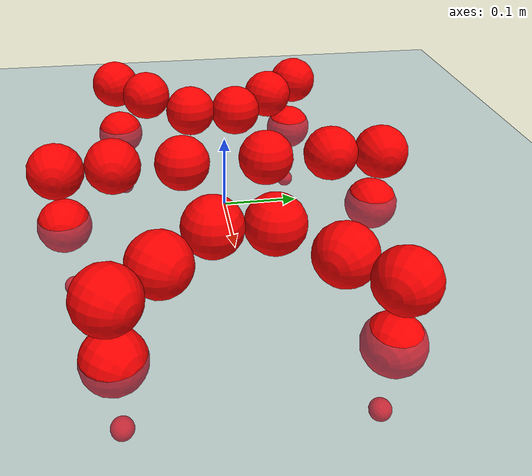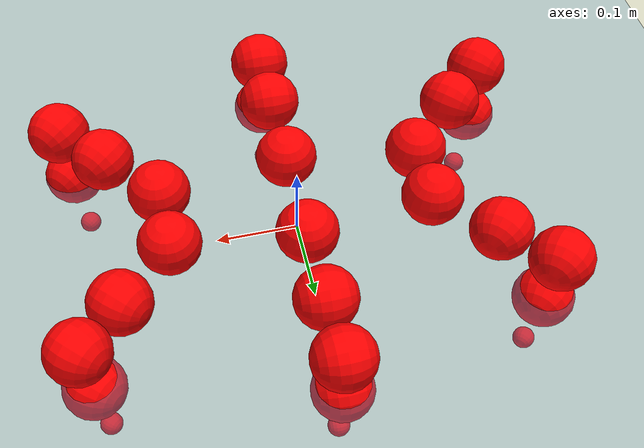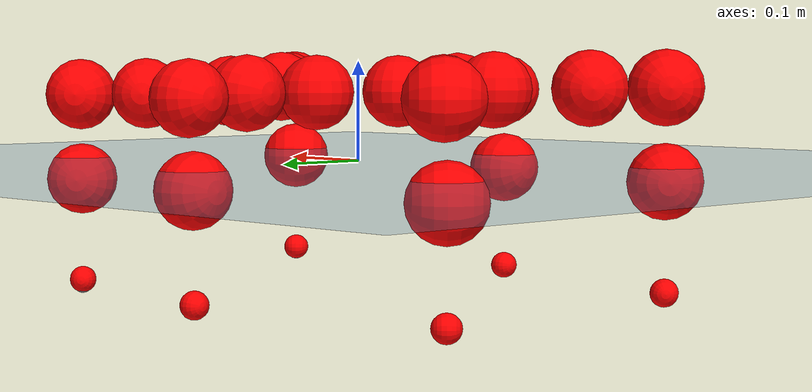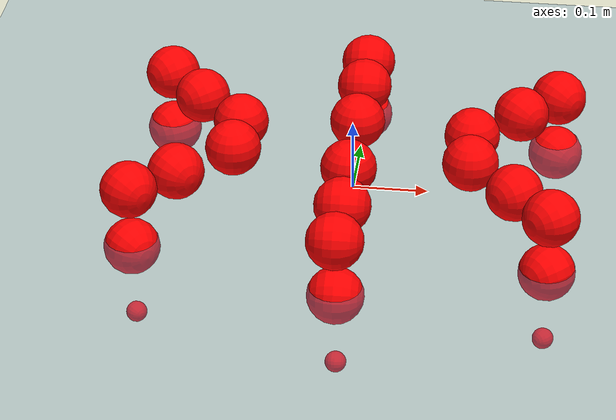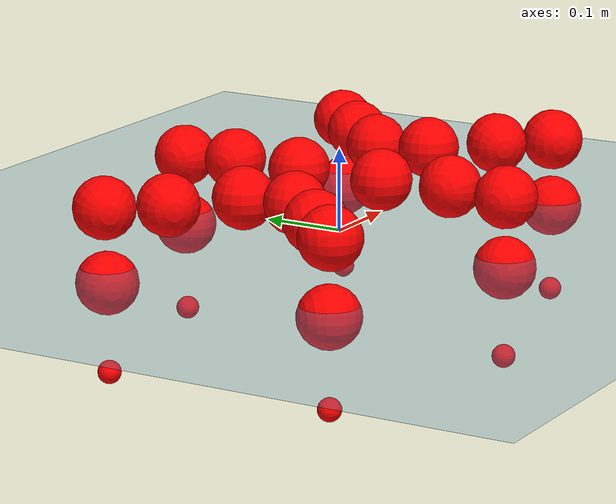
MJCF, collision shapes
<mujoco model="Golem">
  <compiler angle="radian" assetdir="assets" balanceinertia="true" inertiafromgeom="false"/>

  <option timestep="0.005" density="1.2" viscosity="2e-05"/>

  <size nkey="1"/>

  <visual>
    <quality shadowsize="8192"/>
    <map shadowclip="0.5"/>
  </visual>

  <default>
    <default class="/">
      <joint armature="0.01" damping="0.01" frictionloss="0.01"/>
      <geom contype="0" conaffinity="0" group="1" solref="-1000 -80"/>
      <site size="0.01 0.005 0.005" group="5"/>
      <general forcelimited="true" biastype="affine" gainprm="25" biasprm="0 -25 -0.5"/>
      <default class="visual">
        <geom type="mesh" group="2"/>
      </default>
      <default class="collision">
        <geom group="3"/>
      </default>
      <default class="foot">
        <geom size="0.01 0 0" condim="6" group="4" priority="1" solimp="0.015 1 0.01"/>
      </default>
      <default class="reward_collision_sphere">
        <geom group="5" rgba="1 0 0 1"/>
      </default>
    </default>
  </default>

  <asset>
    <texture type="skybox" colorspace="auto" name="//unnamed_texture_0" builtin="gradient" rgb1="0.95 0.95 0.95" rgb2="0.95 0.95 0.95" width="100" height="600"/>
    <texture type="2d" colorspace="auto" name="texplane" builtin="checker" rgb1="0.345 0.575 0.748" rgb2="0.345 0.575 0.748" markrgb="1 1 1" width="512" height="512"/>
    <material name="MatPlane" class="/" texture="texplane" texuniform="true" texrepeat="2 2" specular="0.9"/>
    <mesh name="body" class="/" file="body.stl" scale="0.001 0.001 0.001"/>
    <mesh name="coxa" class="/" file="coxa.stl" scale="0.001 0.001 0.001"/>
    <mesh name="femur" class="/" file="femur.stl" scale="0.001 0.001 0.001"/>
    <mesh name="tibia" class="/" file="tibia.stl" scale="0.001 0.001 0.001"/>
    <mesh name="tarsus" class="/" file="tarsus.stl" scale="0.001 0.001 0.001"/>
  </asset>

  <worldbody>
    <geom name="floor" class="/" size="100 100 0.125" type="plane" group="0" material="MatPlane"/>
    <light name="toplight_shadow" class="/" pos="0 0 5" dir="0.0990148 0.0990148 -0.990148" type="directional" ambient="0.04 0.04 0.04" diffuse="0.55 0.55 0.55" specular="0.12 0.12 0.12"/>
    <light name="toplight_fill" class="/" pos="0 0 5" dir="0.0990148 0.0990148 -0.990148" type="directional" castshadow="false" ambient="0.04 0.04 0.04" diffuse="0.3 0.3 0.3" specular="0.08 0.08 0.08"/>
    <body name="trunk" pos="0.00128027 0.000292402 -0.000163479" quat="0.999999 -0.000949871 -0.000472649 0.000895375">
      <inertial pos="0.000800395 0.00124574 -0.00221433" quat="0.999903 -0.00377747 0.0118801 -0.00624388" mass="2.94583" diaginertia="0.00980672 0.00129012 0.0175717"/>
      <joint name="//unnamed_joint_0" type="free"/>
      <geom name="//unnamed_geom_1" class="/" pos="0 0 0.0711092" quat="1 0 0 0" type="mesh" rgba="0.9 0.9 0.9 1" mesh="body"/>
      <site name="imu" class="/" pos="0.115291 -0.00140115 0.116389" size="0.00924133"/>
      <camera name="track" class="/" pos="0 -1.33411 0" quat="0.707107 0.707107 0 0" mode="trackcom"/>
      <camera name="ego_camera" class="/" pos="0.129254 0 0.111108" quat="-0.5 -0.5 0.5 0.5"/>
      <body name="coxa_RR" pos="-0.177049 -0.0530232 0.0731216" quat="0.382563 0.000160478 -0.000576638 -0.923929">
        <inertial pos="0.000546345 -0.00236932 0.00025848" quat="0.999989 0.00122347 -0.00248796 0.00387613" mass="0.165371" diaginertia="0.00974055 0.00133813 0.0173047"/>
        <joint name="coxa_joint_RR" class="/" pos="0 0 0" axis="0.00397166 0.000415284 -0.999992" range="-3.19481 3.16592" armature="0.00821496" damping="0.0159208" frictionloss="0.00966874"/>
        <geom name="//unnamed_geom_2" class="/" type="mesh" rgba="0.2 0.2 0.2 1" mesh="coxa"/>
        <geom name="//unnamed_geom_3" class="reward_collision_sphere" size="0.0369653" pos="-0.0298279 0 0"/>
        <body name="femur_RR" pos="0.06177 0.000503582 0.00145823" quat="0.500028 -0.500018 0.499948 0.500006">
          <inertial pos="0.000364807 -0.0027613 0.000233577" quat="1 -0.000620473 0.000513428 -0.000361337" mass="0.15631" diaginertia="0.00961438 0.00131236 0.0168234"/>
          <joint name="femur_joint_RR" class="/" pos="0 0 0" axis="0.00305043 -0.00355057 -0.999989" range="-3.09192 3.14844" armature="0.00806129" damping="0.00597041" frictionloss="0.00807979"/>
          <geom name="//unnamed_geom_4" class="/" type="mesh" rgba="0.9 0.9 0.9 1" mesh="femur"/>
          <geom name="//unnamed_geom_5" class="reward_collision_sphere" size="0.0369653"/>
          <body name="tibia_RR" pos="-0.000629949 -0.0720301 -0.00233271" quat="-2.04345e-05 1 -9.71751e-05 -3.02494e-05">
            <inertial pos="-0.0028441 0.000763237 -0.000185828" quat="0.999992 0.00143984 -0.00331379 -0.00194047" mass="0.153012" diaginertia="0.00925173 0.00125962 0.0166477"/>
            <joint name="tibia_joint_RR" class="/" pos="0 0 0" axis="-0.00226859 0.000364734 0.999997" range="-3.14176 3.10004" armature="0.00965015" damping="0.0209934" frictionloss="0.00948909"/>
            <geom name="//unnamed_geom_6" class="/" type="mesh" rgba="0.2 0.2 0.2 1" mesh="tibia"/>
            <geom name="//unnamed_geom_7" class="reward_collision_sphere" size="0.0369653"/>
            <body name="tarsus_RR" pos="0.0896896 -0.000268836 0.00152556" quat="1 -0.000185949 -0.000176414 -5.40499e-05">
              <inertial pos="0.0627816 0.000568503 0.00274708" quat="0.505994 0.495799 0.496812 0.501329" mass="0.162453" diaginertia="0.00968533 0.00138602 0.0172541"/>
              <joint name="tarsus_joint_RR" class="/" pos="0 0 0" axis="0.00393636 0.00837581 0.999957" range="-3.13134 3.14049" armature="0.00910466" damping="0.00407409" frictionloss="0.00875003"/>
              <geom name="//unnamed_geom_8" class="/" type="mesh" rgba="0.9 0.9 0.9 1" mesh="tarsus"/>
              <geom name="foot_1" class="foot" size="0.00897514" pos="0.111358 0 0" quat="0 -0.707107 0 0.707107"/>
              <geom name="//unnamed_geom_10" class="reward_collision_sphere" size="0.0369653"/>
              <geom name="//unnamed_geom_11" class="reward_collision_sphere" size="0.013862" pos="0.106883 0 0"/>
              <site name="foot_1" class="foot" pos="0.111358 0 0" quat="0 -0.707107 0 0.707107" size="0.00924133"/>
            </body>
          </body>
        </body>
      </body>
      <body name="coxa_RM" pos="-0.000674156 -0.0867638 0.0693473" quat="0.70683 -8.79513e-05 -0.000174459 -0.707384">
        <inertial pos="5.61636e-05 -0.00242229 0.00125949" quat="0.999927 -0.00905665 -0.00797356 -0.000293575" mass="0.155313" diaginertia="0.00929184 0.00127834 0.0171184"/>
        <joint name="coxa_joint_RM" class="/" pos="0 0 0" axis="0.00140061 0.00367731 -0.999992" range="-3.13195 3.12032" armature="0.0080258" damping="0.0099002" frictionloss="0.0103473"/>
        <geom name="//unnamed_geom_12" class="/" type="mesh" rgba="0.2 0.2 0.2 1" mesh="coxa"/>
        <geom name="//unnamed_geom_13" class="reward_collision_sphere" size="0.0369653" pos="-0.0298279 0 0"/>
        <body name="femur_RM" pos="0.0609172 0.00224537 0.0027937" quat="0.499595 -0.50045 0.499943 0.500012">
          <inertial pos="-0.00175958 -0.00240065 -0.00106678" quat="1 -0.000315908 7.62102e-05 0.000573595" mass="0.161882" diaginertia="0.00975834 0.00126942 0.0170376"/>
          <joint name="femur_joint_RM" class="/" pos="0 0 0" axis="0.00991574 -0.00911377 -0.999909" range="-3.16366 3.16222" armature="0.00903624" damping="0.0153144" frictionloss="0.00964026"/>
          <geom name="//unnamed_geom_14" class="/" type="mesh" rgba="0.9 0.9 0.9 1" mesh="femur"/>
          <geom name="//unnamed_geom_15" class="reward_collision_sphere" size="0.0369653"/>
          <body name="tibia_RM" pos="0.00320799 -0.0733635 -0.00124588" quat="-5.93969e-05 1 7.22972e-05 -1.51473e-05">
            <inertial pos="-0.00253947 -0.000861017 -0.000451533" quat="0.999978 -0.00289532 0.00485988 0.00353034" mass="0.154705" diaginertia="0.00990431 0.0013012 0.016791"/>
            <joint name="tibia_joint_RM" class="/" pos="0 0 0" axis="-0.00704879 0.00138894 0.999974" stiffness="0.000550099" range="-3.16684 3.11709" armature="0.00856965" damping="0" frictionloss="0.00802372"/>
            <geom name="//unnamed_geom_16" class="/" type="mesh" rgba="0.2 0.2 0.2 1" mesh="tibia"/>
            <geom name="//unnamed_geom_17" class="reward_collision_sphere" size="0.0369653"/>
            <body name="tarsus_RM" pos="0.0844984 -0.00070804 -0.000300456" quat="0.999999 3.99946e-05 -0.00142218 -0.000173782">
              <inertial pos="0.056665 -0.000291185 -0.00255126" quat="0.500175 0.506687 0.493732 0.499321" mass="0.157646" diaginertia="0.0095101 0.00132442 0.0165476"/>
              <joint name="tarsus_joint_RM" class="/" pos="0 0 0" axis="0.00229716 0.00422741 0.999988" stiffness="0.00543657" range="-3.14668 3.10994" armature="0.00936074" damping="0.0115485" frictionloss="0.00858273"/>
              <geom name="//unnamed_geom_18" class="/" type="mesh" rgba="0.9 0.9 0.9 1" mesh="tarsus"/>
              <geom name="foot_2" class="foot" size="0.00900465" pos="0.111358 0 0" quat="0 -0.707107 0 0.707107"/>
              <geom name="//unnamed_geom_20" class="reward_collision_sphere" size="0.0369653"/>
              <geom name="//unnamed_geom_21" class="reward_collision_sphere" size="0.013862" pos="0.106883 0 0"/>
              <site name="foot_2" class="foot" pos="0.111358 0 0" quat="0 -0.707107 0 0.707107" size="0.00924133"/>
            </body>
          </body>
        </body>
      </body>
      <body name="coxa_RF" pos="0.177399 -0.0561366 0.0727909" quat="0.923913 -0.000152365 -0.000119567 -0.382603">
        <inertial pos="0.000340528 -0.000632835 -0.00140406" quat="0.999957 -0.00916659 -8.61854e-05 0.00171398" mass="0.156044" diaginertia="0.00982632 0.00132354 0.0167949"/>
        <joint name="coxa_joint_RF" class="/" pos="0 0 0" axis="-0.00202951 0.00126111 -0.999997" range="-3.13747 3.11659" armature="0.00951458" damping="0" frictionloss="0.00796541"/>
        <geom name="//unnamed_geom_22" class="/" type="mesh" rgba="0.2 0.2 0.2 1" mesh="coxa"/>
        <geom name="//unnamed_geom_23" class="reward_collision_sphere" size="0.0369653" pos="-0.0298279 0 0"/>
        <body name="femur_RF" pos="0.0565856 -0.00180156 0.000124132" quat="0.499369 -0.500293 0.500097 0.50024">
          <inertial pos="0.000950332 -9.64951e-05 -0.00274081" quat="0.999916 0.0109518 -0.00174033 -0.0066612" mass="0.152094" diaginertia="0.00941106 0.00128277 0.0164489"/>
          <joint name="femur_joint_RF" class="/" pos="0 0 0" axis="0.0109612 0.00539672 -0.999925" range="-3.08492 3.19091" armature="0.00909135" damping="0.0100373" frictionloss="0.00968293"/>
          <geom name="//unnamed_geom_24" class="/" type="mesh" rgba="0.9 0.9 0.9 1" mesh="femur"/>
          <geom name="//unnamed_geom_25" class="reward_collision_sphere" size="0.0369653"/>
          <body name="tibia_RF" pos="-0.000974839 -0.0713236 -0.00296821" quat="0.000583254 1 -0.000124807 0.000369378">
            <inertial pos="0.000624862 -0.00140299 -0.000413379" quat="0.999903 -0.00250422 0.00875708 -0.0105538" mass="0.165627" diaginertia="0.0098459 0.00135419 0.017225"/>
            <joint name="tibia_joint_RF" class="/" pos="0 0 0" axis="0.00327256 -0.00270529 0.999991" stiffness="0.017007" range="-3.14908 3.11464" armature="0.00925945" damping="0.0239968" frictionloss="0.00915383"/>
            <geom name="//unnamed_geom_26" class="/" type="mesh" rgba="0.2 0.2 0.2 1" mesh="tibia"/>
            <geom name="//unnamed_geom_27" class="reward_collision_sphere" size="0.0369653"/>
            <body name="tarsus_RF" pos="0.0837561 -0.00066657 0.00138647" quat="0.999999 0.000491138 0.000296719 0.000860311">
              <inertial pos="0.0612934 -0.000712666 0.00191233" quat="0.500782 0.499049 0.500484 0.499683" mass="0.153779" diaginertia="0.0099756 0.00131843 0.0166078"/>
              <joint name="tarsus_joint_RF" class="/" pos="0 0 0" axis="-0.00638379 -0.0076406 0.99995" range="-3.1183 3.1044" armature="0.00991782" damping="0" frictionloss="0.00890987"/>
              <geom name="//unnamed_geom_28" class="/" type="mesh" rgba="0.9 0.9 0.9 1" mesh="tarsus"/>
              <geom name="foot_3" class="foot" size="0.00941011" pos="0.111358 0 0" quat="0 -0.707107 0 0.707107"/>
              <geom name="//unnamed_geom_30" class="reward_collision_sphere" size="0.0369653"/>
              <geom name="//unnamed_geom_31" class="reward_collision_sphere" size="0.013862" pos="0.106883 0 0"/>
              <site name="foot_3" class="foot" pos="0.111358 0 0" quat="0 -0.707107 0 0.707107" size="0.00924133"/>
            </body>
          </body>
        </body>
      </body>
      <body name="coxa_LR" pos="-0.176903 0.0583378 0.0702037" quat="0.38272 -5.62006e-05 -8.50195e-05 0.923864">
        <inertial pos="0.000109665 -0.00302425 -0.00149869" quat="0.999949 0.00889249 -0.00478117 -0.000322698" mass="0.153615" diaginertia="0.00981644 0.00135611 0.0169396"/>
        <joint name="coxa_joint_LR" class="/" pos="0 0 0" axis="-0.00561984 -0.00101137 -0.999984" stiffness="0.0117464" range="-3.12892 3.12096" armature="0.0105375" damping="0.0123718" frictionloss="0.0100056"/>
        <geom name="//unnamed_geom_32" class="/" type="mesh" rgba="0.2 0.2 0.2 1" mesh="coxa"/>
        <geom name="//unnamed_geom_33" class="reward_collision_sphere" size="0.0369653" pos="-0.0298279 0 0"/>
        <body name="femur_LR" pos="0.058495 0.000165707 -0.00234301" quat="0.499337 -0.500704 0.49994 0.500018">
          <inertial pos="0.00047183 -0.00280142 0.00055739" quat="0.999907 -0.00374636 0.00425417 -0.0123643" mass="0.162197" diaginertia="0.00965603 0.0013082 0.0170298"/>
          <joint name="femur_joint_LR" class="/" pos="0 0 0" axis="0.0037228 0.00205852 0.999991" range="-3.13968 3.14292" armature="0.0103552" damping="0.0128048" frictionloss="0.00896094"/>
          <geom name="//unnamed_geom_34" class="/" type="mesh" rgba="0.9 0.9 0.9 1" mesh="femur"/>
          <geom name="//unnamed_geom_35" class="reward_collision_sphere" size="0.0369653"/>
          <body name="tibia_LR" pos="-0.00130908 -0.0738469 -0.00238042" quat="-4.91671e-05 1 2.18122e-05 3.97256e-05">
            <inertial pos="-0.000293375 0.000844334 0.00109641" quat="0.999957 -0.00252256 0.00890591 0.000673866" mass="0.163217" diaginertia="0.00998992 0.00137626 0.0177064"/>
            <joint name="tibia_joint_LR" class="/" pos="0 0 0" axis="-0.0047794 0.005374 -0.999974" range="-3.11369 3.16888" armature="0.00872612" damping="0.0215555" frictionloss="0.0102471"/>
            <geom name="//unnamed_geom_36" class="/" type="mesh" rgba="0.2 0.2 0.2 1" mesh="tibia"/>
            <geom name="//unnamed_geom_37" class="reward_collision_sphere" size="0.0369653"/>
            <body name="tarsus_LR" pos="0.0882839 -0.00107349 -0.00259463" quat="0.999999 0.000518513 -0.000379794 -0.000820862">
              <inertial pos="0.0590857 -0.000542542 0.00166613" quat="0.500379 0.500766 0.499814 0.499039" mass="0.158994" diaginertia="0.0100999 0.00131217 0.0173463"/>
              <joint name="tarsus_joint_LR" class="/" pos="0 0 0" axis="0.001835 -0.00396822 -0.99999" range="-3.09098 3.08662" armature="0.00833062" damping="0.0120147" frictionloss="0.00911632"/>
              <geom name="//unnamed_geom_38" class="/" type="mesh" rgba="0.9 0.9 0.9 1" mesh="tarsus"/>
              <geom name="foot_4" class="foot" size="0.00916422" pos="0.111358 0 0" quat="0.707107 0 -0.707107 0"/>
              <geom name="//unnamed_geom_40" class="reward_collision_sphere" size="0.0369653"/>
              <geom name="//unnamed_geom_41" class="reward_collision_sphere" size="0.013862" pos="0.106883 0 0"/>
              <site name="foot_4" class="foot" pos="0.111358 0 0" quat="0.707107 0 -0.707107 0" size="0.00924133"/>
            </body>
          </body>
        </body>
      </body>
      <body name="coxa_LM" pos="-0.000828209 0.0855739 0.0696882" quat="0.707656 -0.000470823 0.000690517 0.706557">
        <inertial pos="0.000193122 -0.000378664 -0.00107492" quat="0.999904 0.00900427 -0.00460416 -0.00947032" mass="0.159133" diaginertia="0.00918108 0.00129248 0.0163776"/>
        <joint name="coxa_joint_LM" class="/" pos="0 0 0" axis="-0.00283957 0.00485621 -0.999984" range="-3.12819 3.08659" armature="0.00945655" damping="0.0208777" frictionloss="0.00920966"/>
        <geom name="//unnamed_geom_42" class="/" type="mesh" rgba="0.2 0.2 0.2 1" mesh="coxa"/>
        <geom name="//unnamed_geom_43" class="reward_collision_sphere" size="0.0369653" pos="-0.0298279 0 0"/>
        <body name="femur_LM" pos="0.0595625 4.47111e-05 0.000658564" quat="0.499865 -0.499988 0.500138 0.500009">
          <inertial pos="0.000610983 0.00238925 -0.00239135" quat="0.999994 0.00197198 -0.00188499 0.00193524" mass="0.163155" diaginertia="0.00940166 0.00136243 0.0173441"/>
          <joint name="femur_joint_LM" class="/" pos="0 0 0" axis="-0.00135239 0.00189603 0.999997" stiffness="0.00580594" range="-3.13293 3.12981" armature="0.00873179" damping="0" frictionloss="0.00995313"/>
          <geom name="//unnamed_geom_44" class="/" type="mesh" rgba="0.9 0.9 0.9 1" mesh="femur"/>
          <geom name="//unnamed_geom_45" class="reward_collision_sphere" size="0.0369653"/>
          <body name="tibia_LM" pos="0.00343689 -0.0714317 0.00180347" quat="4.65302e-05 0.999999 0.00115805 0.000311828">
            <inertial pos="0.00189309 -0.000530705 0.00191043" quat="0.999971 -0.00167973 -0.0052139 -0.00534444" mass="0.157669" diaginertia="0.00987544 0.00130117 0.0166"/>
            <joint name="tibia_joint_LM" class="/" pos="0 0 0" axis="-0.0044447 0.01105 -0.999929" stiffness="0.00833174" range="-3.13406 3.15258" armature="0.00999651" damping="0" frictionloss="0.010533"/>
            <geom name="//unnamed_geom_46" class="/" type="mesh" rgba="0.2 0.2 0.2 1" mesh="tibia"/>
            <geom name="//unnamed_geom_47" class="reward_collision_sphere" size="0.0369653"/>
            <body name="tarsus_LM" pos="0.0857426 -0.00173704 -0.0030689" quat="1 2.71877e-05 2.51427e-05 6.1612e-05">
              <inertial pos="0.0596212 -0.00219547 -0.00250264" quat="0.499992 0.500256 0.499856 0.499896" mass="0.158477" diaginertia="0.00961696 0.0013086 0.0174682"/>
              <joint name="tarsus_joint_LM" class="/" pos="0 0 0" axis="-0.000508733 0.00901036 -0.999959" stiffness="0.000843096" range="-3.12715 3.15811" armature="0.00883852" damping="0.0129685" frictionloss="0.00820861"/>
              <geom name="//unnamed_geom_48" class="/" type="mesh" rgba="0.9 0.9 0.9 1" mesh="tarsus"/>
              <geom name="foot_5" class="foot" size="0.00939863" pos="0.111358 0 0" quat="0.707107 0 -0.707107 0"/>
              <geom name="//unnamed_geom_50" class="reward_collision_sphere" size="0.0369653"/>
              <geom name="//unnamed_geom_51" class="reward_collision_sphere" size="0.013862" pos="0.106883 0 0"/>
              <site name="foot_5" class="foot" pos="0.111358 0 0" quat="0.707107 0 -0.707107 0" size="0.00924133"/>
            </body>
          </body>
        </body>
      </body>
      <body name="coxa_LF" pos="0.175133 0.0581128 0.0688616" quat="0.923586 -9.437e-06 0.000358885 0.383391">
        <inertial pos="0.00173604 0.00104577 0.00268603" quat="1 -9.10614e-05 0.000406895 4.14247e-05" mass="0.156582" diaginertia="0.00958413 0.00135836 0.0169331"/>
        <joint name="coxa_joint_LF" class="/" pos="0 0 0" axis="0.002124 0.00293373 -0.999993" stiffness="0.00332686" range="-3.12524 3.12484" armature="0.00812289" damping="0.00110836" frictionloss="0.00942018"/>
        <geom name="//unnamed_geom_52" class="/" type="mesh" rgba="0.2 0.2 0.2 1" mesh="coxa"/>
        <geom name="//unnamed_geom_53" class="reward_collision_sphere" size="0.0369653" pos="-0.0298279 0 0"/>
        <body name="femur_LF" pos="0.059312 0.000152613 -0.0022933" quat="0.500412 -0.500597 0.499759 0.499231">
          <inertial pos="-0.00121354 0.00193474 0.00118205" quat="0.999904 -0.0034982 0.0025203 0.0131961" mass="0.152955" diaginertia="0.00956856 0.00131346 0.0168331"/>
          <joint name="femur_joint_LF" class="/" pos="0 0 0" axis="0.00161321 0.00063808 0.999998" range="-3.15032 3.12775" armature="0.009324" damping="0.00173408" frictionloss="0.00932366"/>
          <geom name="//unnamed_geom_54" class="/" type="mesh" rgba="0.9 0.9 0.9 1" mesh="femur"/>
          <geom name="//unnamed_geom_55" class="reward_collision_sphere" size="0.0369653"/>
          <body name="tibia_LF" pos="0.000991039 -0.0692642 0.000215055" quat="4.29846e-05 1 -0.00047328 -0.000806836">
            <inertial pos="-0.00128976 0.000644562 -0.000616318" quat="0.999975 -0.00120252 -0.0068571 -0.000837958" mass="0.156626" diaginertia="0.0094121 0.0013209 0.0163226"/>
            <joint name="tibia_joint_LF" class="/" pos="0 0 0" axis="-0.00331607 -0.00555345 -0.999979" stiffness="0.0160581" range="-3.14096 3.19443" armature="0.00864516" damping="0.0147774" frictionloss="0.00871328"/>
            <geom name="//unnamed_geom_56" class="/" type="mesh" rgba="0.2 0.2 0.2 1" mesh="tibia"/>
            <geom name="//unnamed_geom_57" class="reward_collision_sphere" size="0.0369653"/>
            <body name="tarsus_LF" pos="0.0890181 -0.00081832 -0.000291956" quat="1 -0.000231264 7.63996e-05 -1.47767e-05">
              <inertial pos="0.0573768 -0.00283802 -0.00224799" quat="0.49298 0.50666 0.49851 0.501751" mass="0.156888" diaginertia="0.00987058 0.00132989 0.017143"/>
              <joint name="tarsus_joint_LF" class="/" pos="0 0 0" axis="-0.0113707 0.01004 -0.999885" range="-3.18305 3.19345" armature="0.00796726" damping="0.00725739" frictionloss="0.00878907"/>
              <geom name="//unnamed_geom_58" class="/" type="mesh" rgba="0.9 0.9 0.9 1" mesh="tarsus"/>
              <geom name="foot_6" class="foot" size="0.00998141" pos="0.111358 0 0" quat="0.707107 0 -0.707107 0"/>
              <geom name="//unnamed_geom_60" class="reward_collision_sphere" size="0.0369653"/>
              <geom name="//unnamed_geom_61" class="reward_collision_sphere" size="0.013862" pos="0.106883 0 0"/>
              <site name="foot_6" class="foot" pos="0.111358 0 0" quat="0.707107 0 -0.707107 0" size="0.00924133"/>
            </body>
          </body>
        </body>
      </body>
    </body>
  </worldbody>

  <contact>
    <pair class="/" geom1="floor" geom2="foot_1" name="//unnamed_contact_0"/>
    <pair class="/" geom1="floor" geom2="foot_2" name="//unnamed_contact_1"/>
    <pair class="/" geom1="floor" geom2="foot_3" name="//unnamed_contact_2"/>
    <pair class="/" geom1="floor" geom2="foot_4" name="//unnamed_contact_3"/>
    <pair class="/" geom1="floor" geom2="foot_5" name="//unnamed_contact_4"/>
    <pair class="/" geom1="floor" geom2="foot_6" name="//unnamed_contact_5"/>
  </contact>

  <actuator>
    <general name="coxa_joint_RR" class="/" joint="coxa_joint_RR" forcerange="-6.87649 6.87649" gainprm="22.1222" biasprm="0 -22.1222 -0.468941"/>
    <general name="femur_joint_RR" class="/" joint="femur_joint_RR" forcerange="-7.35269 7.35269" gainprm="22.1222" biasprm="0 -22.1222 -0.468941"/>
    <general name="tibia_joint_RR" class="/" joint="tibia_joint_RR" forcerange="-6.52148 6.52148" gainprm="22.1222" biasprm="0 -22.1222 -0.468941"/>
    <general name="tarsus_joint_RR" class="/" joint="tarsus_joint_RR" forcerange="-7.44725 7.44725" gainprm="22.1222" biasprm="0 -22.1222 -0.468941"/>
    <general name="coxa_joint_RM" class="/" joint="coxa_joint_RM" forcerange="-6.36836 6.36836" gainprm="22.1222" biasprm="0 -22.1222 -0.468941"/>
    <general name="femur_joint_RM" class="/" joint="femur_joint_RM" forcerange="-6.92901 6.92901" gainprm="22.1222" biasprm="0 -22.1222 -0.468941"/>
    <general name="tibia_joint_RM" class="/" joint="tibia_joint_RM" forcerange="-7.45049 7.45049" gainprm="22.1222" biasprm="0 -22.1222 -0.468941"/>
    <general name="tarsus_joint_RM" class="/" joint="tarsus_joint_RM" forcerange="-6.53132 6.53132" gainprm="22.1222" biasprm="0 -22.1222 -0.468941"/>
    <general name="coxa_joint_RF" class="/" joint="coxa_joint_RF" forcerange="-7.07725 7.07725" gainprm="22.1222" biasprm="0 -22.1222 -0.468941"/>
    <general name="femur_joint_RF" class="/" joint="femur_joint_RF" forcerange="-6.67487 6.67487" gainprm="22.1222" biasprm="0 -22.1222 -0.468941"/>
    <general name="tibia_joint_RF" class="/" joint="tibia_joint_RF" forcerange="-6.98544 6.98544" gainprm="22.1222" biasprm="0 -22.1222 -0.468941"/>
    <general name="tarsus_joint_RF" class="/" joint="tarsus_joint_RF" forcerange="-6.77145 6.77145" gainprm="22.1222" biasprm="0 -22.1222 -0.468941"/>
    <general name="coxa_joint_LR" class="/" joint="coxa_joint_LR" forcerange="-6.79387 6.79387" gainprm="22.1222" biasprm="0 -22.1222 -0.468941"/>
    <general name="femur_joint_LR" class="/" joint="femur_joint_LR" forcerange="-6.70759 6.70759" gainprm="22.1222" biasprm="0 -22.1222 -0.468941"/>
    <general name="tibia_joint_LR" class="/" joint="tibia_joint_LR" forcerange="-7.21476 7.21476" gainprm="22.1222" biasprm="0 -22.1222 -0.468941"/>
    <general name="tarsus_joint_LR" class="/" joint="tarsus_joint_LR" forcerange="-6.67703 6.67703" gainprm="22.1222" biasprm="0 -22.1222 -0.468941"/>
    <general name="coxa_joint_LM" class="/" joint="coxa_joint_LM" forcerange="-6.48186 6.48186" gainprm="22.1222" biasprm="0 -22.1222 -0.468941"/>
    <general name="femur_joint_LM" class="/" joint="femur_joint_LM" forcerange="-7.37812 7.37812" gainprm="22.1222" biasprm="0 -22.1222 -0.468941"/>
    <general name="tibia_joint_LM" class="/" joint="tibia_joint_LM" forcerange="-6.8633 6.8633" gainprm="22.1222" biasprm="0 -22.1222 -0.468941"/>
    <general name="tarsus_joint_LM" class="/" joint="tarsus_joint_LM" forcerange="-6.43927 6.43927" gainprm="22.1222" biasprm="0 -22.1222 -0.468941"/>
    <general name="coxa_joint_LF" class="/" joint="coxa_joint_LF" forcerange="-6.2506 6.2506" gainprm="22.1222" biasprm="0 -22.1222 -0.468941"/>
    <general name="femur_joint_LF" class="/" joint="femur_joint_LF" forcerange="-6.21799 6.21799" gainprm="22.1222" biasprm="0 -22.1222 -0.468941"/>
    <general name="tibia_joint_LF" class="/" joint="tibia_joint_LF" forcerange="-6.09808 6.09808" gainprm="22.1222" biasprm="0 -22.1222 -0.468941"/>
    <general name="tarsus_joint_LF" class="/" joint="tarsus_joint_LF" forcerange="-6.04043 6.04043" gainprm="22.1222" biasprm="0 -22.1222 -0.468941"/>
  </actuator>

  <sensor>
    <gyro site="imu" name="imu_angular_velocity"/>
    <velocimeter site="imu" name="imu_linear_velocity"/>
    <framelinvel objtype="site" objname="foot_1" name="foot_1_global_linear_velocity"/>
    <framelinvel objtype="site" objname="foot_2" name="foot_2_global_linear_velocity"/>
    <framelinvel objtype="site" objname="foot_3" name="foot_3_global_linear_velocity"/>
    <framelinvel objtype="site" objname="foot_4" name="foot_4_global_linear_velocity"/>
    <framelinvel objtype="site" objname="foot_5" name="foot_5_global_linear_velocity"/>
    <framelinvel objtype="site" objname="foot_6" name="foot_6_global_linear_velocity"/>
  </sensor>

  <keyframe>
    <key name="home" qpos="0 0 0.1457 1 0 0 0 0 0 0 0 0 0 0 0 0 0 0 0 0 0 0 0 0 0 0 0 0 0 0 0"/>
  </keyframe>
</mujoco>
